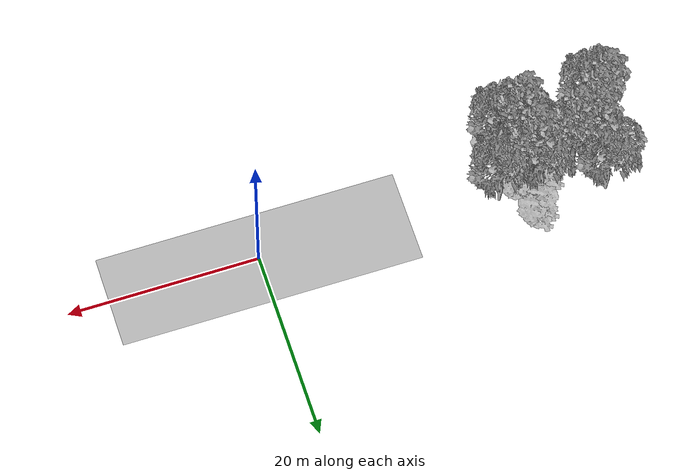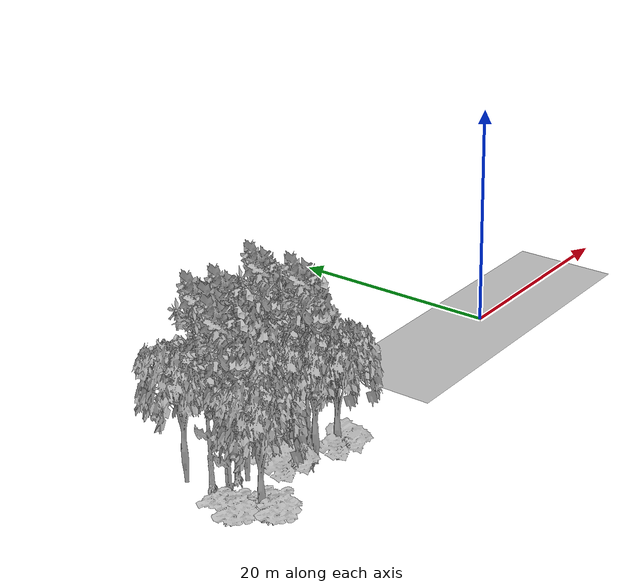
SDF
<sdf version="1.7">
 <world name="default">
  <model name="ground_plane">
   <static>1</static>
   <link name="link">
    <collision name="collision">
     <pose>-50 0 0 0 -0 0</pose>
     <geometry><plane><normal>0 0 1</normal><size>100 100</size></plane></geometry>
     <surface><contact><ode><min_depth>0.01</min_depth><max_vel>0</max_vel></ode></contact></surface>
    </collision>
    <visual name="grass">
     <cast_shadows>0</cast_shadows>
     <geometry>
      <mesh>
       <scale>0.5814285714285714 0.18142857142857144 0.1</scale>
       <uri>file://grass_plane/meshes/grass_plane.dae</uri>
      </mesh>
     </geometry>
    </visual>
   </link>
  </model>
  <model name="Tree 39">
   <static>1</static>
   <pose>-36.713377945901485 -4.955438176366888 0 1.57079 -0 0</pose>
   <link name="link">
    <collision name="collision">
     <geometry><mesh><scale>3.5 5 3.5</scale><uri>model://tree_2/meshes/tree_2.obj</uri></mesh></geometry>
    </collision>
    <visual name="visual">
     <geometry><mesh><scale>3.5 5 3.5</scale><uri>model://tree_2/meshes/tree_2.obj</uri></mesh></geometry>
    </visual>
   </link>
  </model>
  <model name="Tree 81">
   <static>1</static>
   <pose>-28.827968928739708 -1.3764416701420572 0 1.57079 -0 0</pose>
   <link name="link">
    <collision name="collision">
     <geometry><mesh><scale>3.5 5 3.5</scale><uri>model://tree_2/meshes/tree_2.obj</uri></mesh></geometry>
    </collision>
    <visual name="visual">
     <geometry><mesh><scale>3.5 5 3.5</scale><uri>model://tree_2/meshes/tree_2.obj</uri></mesh></geometry>
    </visual>
   </link>
  </model>
  <model name="Tree 84">
   <static>1</static>
   <pose>-37.17496855898004 -2.4882987942499017 0 1.57079 -0 0</pose>
   <link name="link">
    <collision name="collision">
     <geometry><mesh><scale>3.5 5 3.5</scale><uri>model://tree_9/meshes/tree_9.obj</uri></mesh></geometry>
    </collision>
    <visual name="visual">
     <geometry><mesh><scale>3.5 5 3.5</scale><uri>model://tree_9/meshes/tree_9.obj</uri></mesh></geometry>
    </visual>
   </link>
  </model>
  <model name="Tree 92">
   <static>1</static>
   <pose>-30.782452100543257 -0.08707817424112108 0 1.57079 -0 0</pose>
   <link name="link">
    <collision name="collision">
     <geometry><mesh><scale>4 2.5 4</scale><uri>model://tree_1/meshes/tree_1.obj</uri></mesh></geometry>
    </collision>
    <visual name="visual">
     <geometry><mesh><scale>4 2.5 4</scale><uri>model://tree_1/meshes/tree_1.obj</uri></mesh></geometry>
    </visual>
   </link>
  </model>
  <model name="Tree 158">
   <static>1</static>
   <pose>-28.22641401995801 0.8999232357915616 0 1.57079 -0 0</pose>
   <link name="link">
    <collision name="collision">
     <geometry><mesh><scale>4 2.5 4</scale><uri>model://tree_1/meshes/tree_1.obj</uri></mesh></geometry>
    </collision>
    <visual name="visual">
     <geometry><mesh><scale>4 2.5 4</scale><uri>model://tree_1/meshes/tree_1.obj</uri></mesh></geometry>
    </visual>
   </link>
  </model>
  <model name="Tree 174">
   <static>1</static>
   <pose>-35.74605047152066 -0.9910902568546369 0 1.57079 -0 0</pose>
   <link name="link">
    <collision name="collision">
     <geometry><mesh><scale>3.5 5 3.5</scale><uri>model://tree_9/meshes/tree_9.obj</uri></mesh></geometry>
    </collision>
    <visual name="visual">
     <geometry><mesh><scale>3.5 5 3.5</scale><uri>model://tree_9/meshes/tree_9.obj</uri></mesh></geometry>
    </visual>
   </link>
  </model>
  <model name="Tree 184">
   <static>1</static>
   <pose>-28.32883082339188 -3.1775341582242227 0 1.57079 -0 0</pose>
   <link name="link">
    <collision name="collision">
     <geometry><mesh><scale>3.5 5 3.5</scale><uri>model://tree_2/meshes/tree_2.obj</uri></mesh></geometry>
    </collision>
    <visual name="visual">
     <geometry><mesh><scale>3.5 5 3.5</scale><uri>model://tree_2/meshes/tree_2.obj</uri></mesh></geometry>
    </visual>
   </link>
  </model>
  <model name="Tree 247">
   <static>1</static>
   <pose>-28.4059401738131 -2.6552634584868304 0 1.57079 -0 0</pose>
   <link name="link">
    <collision name="collision">
     <geometry><mesh><scale>3.5 5 3.5</scale><uri>model://tree_9/meshes/tree_9.obj</uri></mesh></geometry>
    </collision>
    <visual name="visual">
     <geometry><mesh><scale>3.5 5 3.5</scale><uri>model://tree_9/meshes/tree_9.obj</uri></mesh></geometry>
    </visual>
   </link>
  </model>
  <model name="Tree 274">
   <static>1</static>
   <pose>-33.15034329447867 -0.46268898303387473 0 1.57079 -0 0</pose>
   <link name="link">
    <collision name="collision">
     <geometry><mesh><scale>3.5 5 3.5</scale><uri>model://tree_2/meshes/tree_2.obj</uri></mesh></geometry>
    </collision>
    <visual name="visual">
     <geometry><mesh><scale>3.5 5 3.5</scale><uri>model://tree_2/meshes/tree_2.obj</uri></mesh></geometry>
    </visual>
   </link>
  </model>
  <model name="Tree 303">
   <static>1</static>
   <pose>-28.468897643801437 1.1266948449550043 0 1.57079 -0 0</pose>
   <link name="link">
    <collision name="collision">
     <geometry><mesh><scale>3.5 5 3.5</scale><uri>model://tree_9/meshes/tree_9.obj</uri></mesh></geometry>
    </collision>
    <visual name="visual">
     <geometry><mesh><scale>3.5 5 3.5</scale><uri>model://tree_9/meshes/tree_9.obj</uri></mesh></geometry>
    </visual>
   </link>
  </model>
  <model name="Tree 340">
   <static>1</static>
   <pose>-29.117834244231332 3.0934456180152985 0 1.57079 -0 0</pose>
   <link name="link">
    <collision name="collision">
     <geometry><mesh><scale>4 2.5 4</scale><uri>model://tree_1/meshes/tree_1.obj</uri></mesh></geometry>
    </collision>
    <visual name="visual">
     <geometry><mesh><scale>4 2.5 4</scale><uri>model://tree_1/meshes/tree_1.obj</uri></mesh></geometry>
    </visual>
   </link>
  </model>
  <model name="Tree 363">
   <static>1</static>
   <pose>-28.19214124533774 3.9892463545752648 0 1.57079 -0 0</pose>
   <link name="link">
    <collision name="collision">
     <geometry><mesh><scale>4 2.5 4</scale><uri>model://tree_1/meshes/tree_1.obj</uri></mesh></geometry>
    </collision>
    <visual name="visual">
     <geometry><mesh><scale>4 2.5 4</scale><uri>model://tree_1/meshes/tree_1.obj</uri></mesh></geometry>
    </visual>
   </link>
  </model>
  <model name="Tree 376">
   <static>1</static>
   <pose>-27.103419174684475 0.263106961811868 0 1.57079 -0 0</pose>
   <link name="link">
    <collision name="collision">
     <geometry><mesh><scale>4 2.5 4</scale><uri>model://tree_1/meshes/tree_1.obj</uri></mesh></geometry>
    </collision>
    <visual name="visual">
     <geometry><mesh><scale>4 2.5 4</scale><uri>model://tree_1/meshes/tree_1.obj</uri></mesh></geometry>
    </visual>
   </link>
  </model>
  <model name="Tree 397">
   <static>1</static>
   <pose>-26.888898137367033 -4.183552384465099 0 1.57079 -0 0</pose>
   <link name="link">
    <collision name="collision">
     <geometry><mesh><scale>3.5 5 3.5</scale><uri>model://tree_2/meshes/tree_2.obj</uri></mesh></geometry>
    </collision>
    <visual name="visual">
     <geometry><mesh><scale>3.5 5 3.5</scale><uri>model://tree_2/meshes/tree_2.obj</uri></mesh></geometry>
    </visual>
   </link>
  </model>
  <model name="Tree 416">
   <static>1</static>
   <pose>-25.21108170190126 1.0583063570316185 0 1.57079 -0 0</pose>
   <link name="link">
    <collision name="collision">
     <geometry><mesh><scale>3.5 5 3.5</scale><uri>model://tree_2/meshes/tree_2.obj</uri></mesh></geometry>
    </collision>
    <visual name="visual">
     <geometry><mesh><scale>3.5 5 3.5</scale><uri>model://tree_2/meshes/tree_2.obj</uri></mesh></geometry>
    </visual>
   </link>
  </model>
  <model name="Tree 418">
   <static>1</static>
   <pose>-35.897960764684285 3.1242951514096333 0 1.57079 -0 0</pose>
   <link name="link">
    <collision name="collision">
     <geometry><mesh><scale>3.5 5 3.5</scale><uri>model://tree_2/meshes/tree_2.obj</uri></mesh></geometry>
    </collision>
    <visual name="visual">
     <geometry><mesh><scale>3.5 5 3.5</scale><uri>model://tree_2/meshes/tree_2.obj</uri></mesh></geometry>
    </visual>
   </link>
  </model>
  <model name="Tree 421">
   <static>1</static>
   <pose>-35.11107383536538 1.259221732545086 0 1.57079 -0 0</pose>
   <link name="link">
    <collision name="collision">
     <geometry><mesh><scale>3.5 5 3.5</scale><uri>model://tree_9/meshes/tree_9.obj</uri></mesh></geometry>
    </collision>
    <visual name="visual">
     <geometry><mesh><scale>3.5 5 3.5</scale><uri>model://tree_9/meshes/tree_9.obj</uri></mesh></geometry>
    </visual>
   </link>
  </model>
  <model name="Tree 447">
   <static>1</static>
   <pose>-33.18233305979723 0.4085982194163851 0 1.57079 -0 0</pose>
   <link name="link">
    <collision name="collision">
     <geometry><mesh><scale>3.5 5 3.5</scale><uri>model://tree_9/meshes/tree_9.obj</uri></mesh></geometry>
    </collision>
    <visual name="visual">
     <geometry><mesh><scale>3.5 5 3.5</scale><uri>model://tree_9/meshes/tree_9.obj</uri></mesh></geometry>
    </visual>
   </link>
  </model>
  <model name="Tree 455">
   <static>1</static>
   <pose>-30.829498983862557 -2.879334832540234 0 1.57079 -0 0</pose>
   <link name="link">
    <collision name="collision">
     <geometry><mesh><scale>3 2 3</scale><uri>model://tree_3/meshes/tree_3.obj</uri></mesh></geometry>
    </collision>
    <visual name="visual">
     <geometry><mesh><scale>3 2 3</scale><uri>model://tree_3/meshes/tree_3.obj</uri></mesh></geometry>
    </visual>
   </link>
  </model>
  <model name="Tree 475">
   <static>1</static>
   <pose>-36.20914493071994 -5.431317984887588 0 1.57079 -0 0</pose>
   <link name="link">
    <collision name="collision">
     <geometry><mesh><scale>4 2.5 4</scale><uri>model://tree_1/meshes/tree_1.obj</uri></mesh></geometry>
    </collision>
    <visual name="visual">
     <geometry><mesh><scale>4 2.5 4</scale><uri>model://tree_1/meshes/tree_1.obj</uri></mesh></geometry>
    </visual>
   </link>
  </model>
  <model name="Tree 506">
   <static>1</static>
   <pose>-38.0794368196305 -3.076098524753707 0 1.57079 -0 0</pose>
   <link name="link">
    <collision name="collision">
     <geometry><mesh><scale>4 2.5 4</scale><uri>model://tree_1/meshes/tree_1.obj</uri></mesh></geometry>
    </collision>
    <visual name="visual">
     <geometry><mesh><scale>4 2.5 4</scale><uri>model://tree_1/meshes/tree_1.obj</uri></mesh></geometry>
    </visual>
   </link>
  </model>
  <model name="Tree 526">
   <static>1</static>
   <pose>-26.09176307138897 -4.292847473955565 0 1.57079 -0 0</pose>
   <link name="link">
    <collision name="collision">
     <geometry><mesh><scale>3 2 3</scale><uri>model://tree_3/meshes/tree_3.obj</uri></mesh></geometry>
    </collision>
    <visual name="visual">
     <geometry><mesh><scale>3 2 3</scale><uri>model://tree_3/meshes/tree_3.obj</uri></mesh></geometry>
    </visual>
   </link>
  </model>
  <model name="Tree 528">
   <static>1</static>
   <pose>-29.507180967784926 1.377913901364849 0 1.57079 -0 0</pose>
   <link name="link">
    <collision name="collision">
     <geometry><mesh><scale>3.5 5 3.5</scale><uri>model://tree_2/meshes/tree_2.obj</uri></mesh></geometry>
    </collision>
    <visual name="visual">
     <geometry><mesh><scale>3.5 5 3.5</scale><uri>model://tree_2/meshes/tree_2.obj</uri></mesh></geometry>
    </visual>
   </link>
  </model>
 </world>
</sdf>
